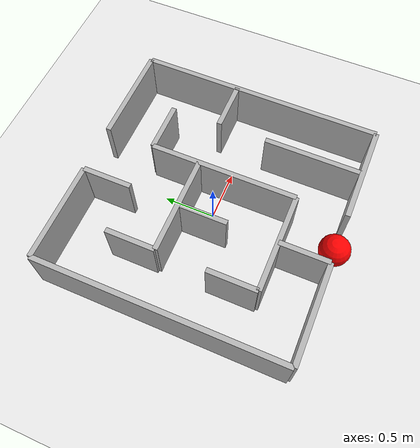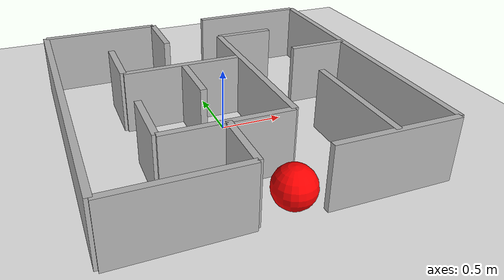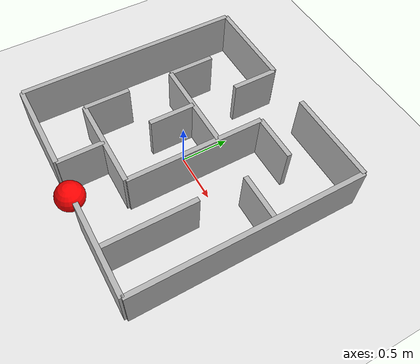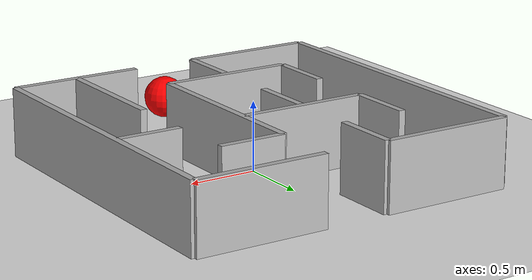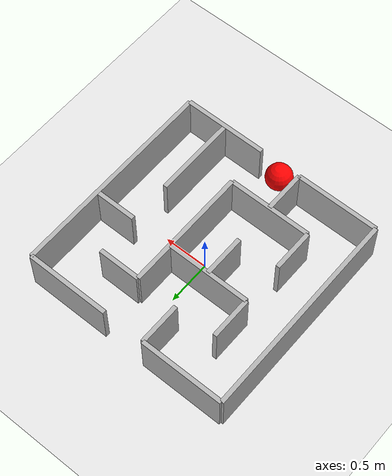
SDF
<?xml version="1.0" ?>
<sdf version="1.6">
  <world name="congminh">

    <physics name="1ms" type="ignored">
      <max_step_size>0.001</max_step_size>
      <real_time_factor>1.0</real_time_factor>
    </physics>

    <plugin filename="gz-sim-physics-system" name="gz::sim::systems::Physics"/>
    <plugin filename="gz-sim-user-commands-system" name="gz::sim::systems::UserCommands"/>
    <plugin filename="gz-sim-scene-broadcaster-system" name="gz::sim::systems::SceneBroadcaster"/>

    <plugin filename="gz-sim-sensors-system" name="gz::sim::systems::Sensors">
      <render_engine>ogre2</render_engine>
    </plugin>

    <light type="directional" name="sun">

      <cast_shadows>true</cast_shadows>

      <pose>0 0 10 0 0 0</pose>

      <diffuse>1 1 1 1</diffuse>

      <specular>0.5 0.5 0.5 1</specular>

      <direction>-0.5 0.1 -0.9</direction>

    </light>

    <scene>
      <background>1 1 1 1</background>
      <ambient>0.4 0.4 0.4 1</ambient>
    </scene>

    <model name="ground_plane">
      <static>true</static>
      <link name="link">
        <collision name="collision">
          <geometry><plane><normal>0 0 1</normal><size>100 100</size></plane></geometry>
        </collision>
        <visual name="visual">
          <geometry><plane><normal>0 0 1</normal><size>100 100</size></plane></geometry>
          <material><ambient>0.9 0.9 0.9 1</ambient><diffuse>0.9 0.9 0.9 1</diffuse></material>
        </visual>
      </link>
    </model>

    <model name="maze_5x5">
      <static>true</static>
      <pose>0 0 0.25 0 0 0</pose>

      <link name="h0">
        <pose>-0.720 1.200 0 0 0 0</pose>
        <collision name="c"><geometry><box><size>0.960 0.050 0.5</size></box></geometry></collision>
        <visual name="v"><geometry><box><size>0.960 0.050 0.5</size></box></geometry><material><diffuse>0.7 0.7 0.7 1</diffuse></material></visual>
      </link>
      <link name="h1">
        <pose>0.720 1.200 0 0 0 0</pose>
        <collision name="c"><geometry><box><size>0.960 0.050 0.5</size></box></geometry></collision>
        <visual name="v"><geometry><box><size>0.960 0.050 0.5</size></box></geometry><material><diffuse>0.7 0.7 0.7 1</diffuse></material></visual>
      </link>
      <link name="h2">
        <pose>0.480 0.720 0 0 0 0</pose>
        <collision name="c"><geometry><box><size>0.480 0.050 0.5</size></box></geometry></collision>
        <visual name="v"><geometry><box><size>0.480 0.050 0.5</size></box></geometry><material><diffuse>0.7 0.7 0.7 1</diffuse></material></visual>
      </link>
      <link name="h3">
        <pose>-0.240 0.240 0 0 0 0</pose>
        <collision name="c"><geometry><box><size>0.960 0.050 0.5</size></box></geometry></collision>
        <visual name="v"><geometry><box><size>0.960 0.050 0.5</size></box></geometry><material><diffuse>0.7 0.7 0.7 1</diffuse></material></visual>
      </link>
      <link name="h4">
        <pose>0.960 0.240 0 0 0 0</pose>
        <collision name="c"><geometry><box><size>0.480 0.050 0.5</size></box></geometry></collision>
        <visual name="v"><geometry><box><size>0.480 0.050 0.5</size></box></geometry><material><diffuse>0.7 0.7 0.7 1</diffuse></material></visual>
      </link>
      <link name="h5">
        <pose>-0.240 -0.720 0 0 0 0</pose>
        <collision name="c"><geometry><box><size>0.960 0.050 0.5</size></box></geometry></collision>
        <visual name="v"><geometry><box><size>0.960 0.050 0.5</size></box></geometry><material><diffuse>0.7 0.7 0.7 1</diffuse></material></visual>
      </link>
      <link name="h6">
        <pose>-0.720 -1.200 0 0 0 0</pose>
        <collision name="c"><geometry><box><size>0.960 0.050 0.5</size></box></geometry></collision>
        <visual name="v"><geometry><box><size>0.960 0.050 0.5</size></box></geometry><material><diffuse>0.7 0.7 0.7 1</diffuse></material></visual>
      </link>
      <link name="h7">
        <pose>0.720 -1.200 0 0 0 0</pose>
        <collision name="c"><geometry><box><size>0.960 0.050 0.5</size></box></geometry></collision>
        <visual name="v"><geometry><box><size>0.960 0.050 0.5</size></box></geometry><material><diffuse>0.7 0.7 0.7 1</diffuse></material></visual>
      </link>
      <link name="v8">
        <pose>-1.200 0.000 0 0 0 0</pose>
        <collision name="c"><geometry><box><size>0.050 2.400 0.5</size></box></geometry></collision>
        <visual name="v"><geometry><box><size>0.050 2.400 0.5</size></box></geometry><material><diffuse>0.7 0.7 0.7 1</diffuse></material></visual>
      </link>
      <link name="v9">
        <pose>-0.720 0.480 0 0 0 0</pose>
        <collision name="c"><geometry><box><size>0.050 0.480 0.5</size></box></geometry></collision>
        <visual name="v"><geometry><box><size>0.050 0.480 0.5</size></box></geometry><material><diffuse>0.7 0.7 0.7 1</diffuse></material></visual>
      </link>
      <link name="v10">
        <pose>-0.720 -0.480 0 0 0 0</pose>
        <collision name="c"><geometry><box><size>0.050 0.480 0.5</size></box></geometry></collision>
        <visual name="v"><geometry><box><size>0.050 0.480 0.5</size></box></geometry><material><diffuse>0.7 0.7 0.7 1</diffuse></material></visual>
      </link>
      <link name="v11">
        <pose>-0.240 0.960 0 0 0 0</pose>
        <collision name="c"><geometry><box><size>0.050 0.480 0.5</size></box></geometry></collision>
        <visual name="v"><geometry><box><size>0.050 0.480 0.5</size></box></geometry><material><diffuse>0.7 0.7 0.7 1</diffuse></material></visual>
      </link>
      <link name="v12">
        <pose>-0.240 0.000 0 0 0 0</pose>
        <collision name="c"><geometry><box><size>0.050 0.480 0.5</size></box></geometry></collision>
        <visual name="v"><geometry><box><size>0.050 0.480 0.5</size></box></geometry><material><diffuse>0.7 0.7 0.7 1</diffuse></material></visual>
      </link>
      <link name="v13">
        <pose>-0.240 -0.960 0 0 0 0</pose>
        <collision name="c"><geometry><box><size>0.050 0.480 0.5</size></box></geometry></collision>
        <visual name="v"><geometry><box><size>0.050 0.480 0.5</size></box></geometry><material><diffuse>0.7 0.7 0.7 1</diffuse></material></visual>
      </link>
      <link name="v14">
        <pose>0.240 0.000 0 0 0 0</pose>
        <collision name="c"><geometry><box><size>0.050 1.440 0.5</size></box></geometry></collision>
        <visual name="v"><geometry><box><size>0.050 1.440 0.5</size></box></geometry><material><diffuse>0.7 0.7 0.7 1</diffuse></material></visual>
      </link>
      <link name="v15">
        <pose>0.720 -0.720 0 0 0 0</pose>
        <collision name="c"><geometry><box><size>0.050 0.960 0.5</size></box></geometry></collision>
        <visual name="v"><geometry><box><size>0.050 0.960 0.5</size></box></geometry><material><diffuse>0.7 0.7 0.7 1</diffuse></material></visual>
      </link>
      <link name="v16">
        <pose>1.200 0.000 0 0 0 0</pose>
        <collision name="c"><geometry><box><size>0.050 2.400 0.5</size></box></geometry></collision>
        <visual name="v"><geometry><box><size>0.050 2.400 0.5</size></box></geometry><material><diffuse>0.7 0.7 0.7 1</diffuse></material></visual>
      </link>

      <!-- GOAL MARKER -->
      <link name="goal_marker">
        <pose>0 -1.2 0 0 0 0</pose>
        <visual name="v">
          <geometry><sphere><radius>0.15</radius></sphere></geometry>
          <material>
            <ambient>1 0 0 1</ambient>
            <diffuse>1 0 0 1</diffuse>
            <emissive>1 0 0 1</emissive>
          </material>
        </visual>
      </link>
    </model>

  </world>
</sdf>
